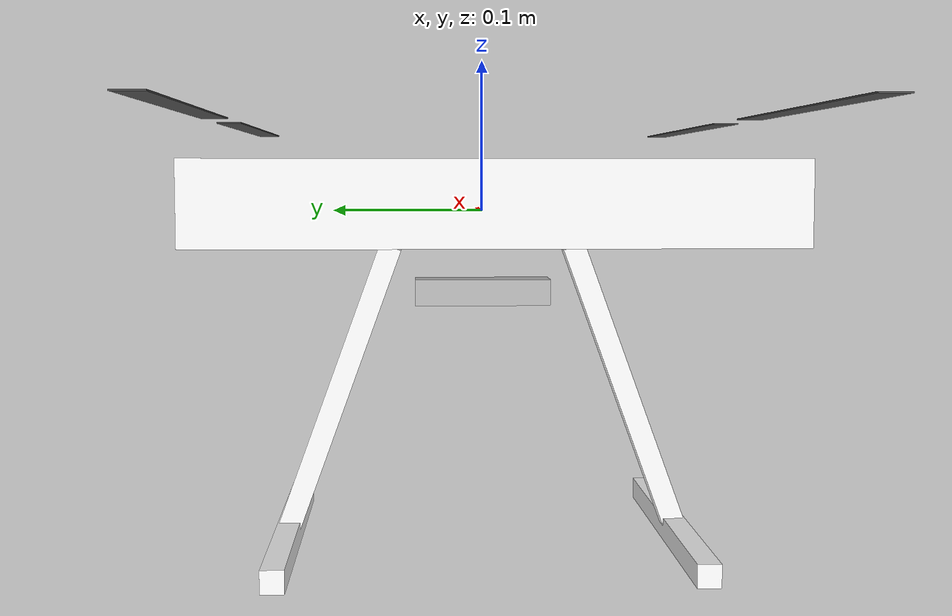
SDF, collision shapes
<?xml version="1.0" encoding="UTF-8"?>
<sdf version='1.9'>
  <model name='x500_base'>
    <self_collide>false</self_collide>
    <static>false</static>
    <link name="base_link">
      <inertial>
        <mass>2.0</mass>
        <inertia>
          <ixx>0.02166666666666667</ixx>
          <ixy>0</ixy>
          <ixz>0</ixz>
          <iyy>0.02166666666666667</iyy>
          <iyz>0</iyz>
          <izz>0.04000000000000001</izz>
        </inertia>
      </inertial>
      <gravity>true</gravity>
      <velocity_decay/>
      <visual name="base_link_visual">
        <pose>0 0 .025 0 0 3.141592654</pose>
        <geometry>
          <mesh>
            <scale>1 1 1</scale>
            <uri>package://carbodrone_px/models/x500_depth/meshes/NXP-HGD-CF.dae</uri>
          </mesh>
        </geometry>
      </visual>
      <visual name="5010_motor_base_0">
        <pose>0.174 0.174 .032 0 0 -.45</pose>
        <geometry>
          <mesh>
            <scale>1 1 1</scale>
            <uri>package://carbodrone_px/models/x500_depth/meshes/5010Base.dae</uri>
          </mesh>
        </geometry>
      </visual>
      <visual name="5010_motor_base_1">
        <pose>-0.174 0.174 .032 0 0 -.45</pose>
        <geometry>
          <mesh>
            <scale>1 1 1</scale>
            <uri>package://carbodrone_px/models/x500_depth/meshes/5010Base.dae</uri>
          </mesh>
        </geometry>
      </visual>
      <visual name="5010_motor_base_2">
        <pose>0.174 -0.174 .032 0 0 -.45</pose>
        <geometry>
          <mesh>
            <scale>1 1 1</scale>
            <uri>package://carbodrone_px/models/x500_depth/meshes/5010Base.dae</uri>
          </mesh>
        </geometry>
      </visual>
      <visual name="5010_motor_base_3">
        <pose>-0.174 -0.174 .032 0 0 -.45</pose>
        <geometry>
          <mesh>
            <scale>1 1 1</scale>
            <uri>package://carbodrone_px/models/x500_depth/meshes/5010Base.dae</uri>
          </mesh>
        </geometry>
      </visual>
      <visual name="NXP_FMUK66_FRONT">
        <pose>0.047 .001 .043 1 0 1.57</pose>
        <cast_shadows>false</cast_shadows>
        <geometry>
          <box>
            <size>.013 .007 0.001</size>
          </box>
        </geometry>
        <material>
          <diffuse>1.0 1.0 1.0</diffuse>
          <specular>1.0 1.0 1.0</specular>
          <pbr>
            <metal>
              <albedo_map>package://carbodrone_px/models/x500_depth/materials/textures/nxp.png</albedo_map>
            </metal>
          </pbr>
        </material>
      </visual>
      <visual name="NXP_FMUK66_TOP">
        <pose>-0.023 0 .0515 0 0 -1.57</pose>
        <cast_shadows>false</cast_shadows>
        <geometry>
          <box>
            <size>.013 .007 0.001</size>
          </box>
        </geometry>
        <material>
          <diffuse>1.0 1.0 1.0</diffuse>
          <specular>1.0 1.0 1.0</specular>
          <pbr>
            <metal>
              <albedo_map>package://carbodrone_px/models/x500_depth/materials/textures/nxp.png</albedo_map>
            </metal>
          </pbr>
        </material>
      </visual>
      <visual name="RDDRONE_FMUK66_TOP">
        <pose>-.03 0 .0515 0 0 -1.57</pose>
        <cast_shadows>false</cast_shadows>
        <geometry>
          <box>
            <size>.032 .0034 0.001</size>
          </box>
        </geometry>
        <material>
          <diffuse>1.0 1.0 1.0</diffuse>
          <specular>1.0 1.0 1.0</specular>
          <pbr>
            <metal>
              <albedo_map>package://carbodrone_px/models/x500_depth/materials/textures/rd.png</albedo_map>
            </metal>
          </pbr>
        </material>
      </visual>
      <collision name="base_link_collision_0">
        <pose>0 0 .007 0 0 0</pose>
        <geometry>
          <box>
            <size>0.35355339059327373 0.35355339059327373 0.05</size>
          </box>
        </geometry>
        <surface>
          <contact>
            <ode>
              <min_depth>0.001</min_depth>
              <max_vel>0</max_vel>
            </ode>
          </contact>
          <friction>
            <ode/>
          </friction>
        </surface>
      </collision>
      <collision name="base_link_collision_1">
        <pose>0 -0.098 -.123 -0.35 0 0</pose>
        <geometry>
          <box>
            <size>0.015 0.015 0.21</size>
          </box>
        </geometry>
        <surface>
          <contact>
            <ode>
              <min_depth>0.001</min_depth>
              <max_vel>0</max_vel>
            </ode>
          </contact>
          <friction>
            <ode/>
          </friction>
        </surface>
      </collision>
      <collision name="base_link_collision_2">
        <pose>0 0.098 -.123 0.35 0 0</pose>
        <geometry>
          <box>
            <size>0.015 0.015 0.21</size>
          </box>
        </geometry>
        <surface>
          <contact>
            <ode>
              <min_depth>0.001</min_depth>
              <max_vel>0</max_vel>
            </ode>
          </contact>
          <friction>
            <ode/>
          </friction>
        </surface>
      </collision>
      <collision name="base_link_collision_3">
        <pose>0 -0.132 -.2195 0 0 0</pose>
        <geometry>
          <box>
            <size>0.25 0.015 0.015</size>
          </box>
        </geometry>
        <surface>
          <contact>
            <ode>
              <min_depth>0.001</min_depth>
              <max_vel>0</max_vel>
            </ode>
          </contact>
          <friction>
            <ode/>
          </friction>
        </surface>
      </collision>
      <collision name="base_link_collision_4">
        <pose>0 0.132 -.2195 0 0 0</pose>
        <geometry>
          <box>
            <size>0.25 0.015 0.015</size>
          </box>
        </geometry>
        <surface>
          <contact>
            <ode>
              <min_depth>0.001</min_depth>
              <max_vel>0</max_vel>
            </ode>
          </contact>
          <friction>
            <ode/>
          </friction>
        </surface>
      </collision>
    </link>
    <link name="rotor_0">
      <gravity>true</gravity>
      <self_collide>false</self_collide>
      <velocity_decay/>
      <pose>0.174 -0.174 0.06 0 0 0</pose>
      <inertial>
          <mass>0.016076923076923075</mass>
          <inertia>
            <ixx>3.8464910483993325e-07</ixx>
            <iyy>2.6115851691700804e-05</iyy>
            <izz>2.649858234714004e-05</izz>
          </inertia>
        </inertial>
      <visual name="rotor_0_visual">
        <pose>-0.022 -0.14638461538461536 -0.016 0 0 0</pose>
        <geometry>
          <mesh>
            <scale>0.8461538461538461 0.8461538461538461 0.8461538461538461</scale>
            <uri>package://carbodrone_px/models/x500_depth/meshes/1345_prop_ccw.stl</uri>
          </mesh>
        </geometry>
        <material>
          <script>
            <name>Gazebo/DarkGrey</name>
            <uri>file://media/materials/scripts/gazebo.material</uri>
          </script>
        </material>
      </visual>
      <visual name="rotor_0_visual_motor_bell">
        <pose>0 0 -.032 0 0 0</pose>
        <geometry>
          <mesh>
            <scale>1 1 1</scale>
            <uri>package://carbodrone_px/models/x500_depth/meshes/5010Bell.dae</uri>
          </mesh>
        </geometry>
      </visual>
      <collision name="rotor_0_collision">
        <pose>0 0 0 0 0 0 </pose>
        <geometry>
          <box>
            <size>0.2792307692307692 0.016923076923076923 0.0008461538461538462</size>
          </box>
        </geometry>
        <surface>
          <contact>
            <ode>
              <min_depth>0.001</min_depth>
              <max_vel>0</max_vel>
            </ode>
          </contact>
          <friction>
            <ode/>
          </friction>
        </surface>
      </collision>
    </link>
    <joint name="rotor_0_joint" type="fixed">
      <parent>base_link</parent>
      <child>rotor_0</child>
    </joint>
    <link name="rotor_1">
      <gravity>true</gravity>
      <self_collide>false</self_collide>
      <velocity_decay/>
      <pose>-0.174 0.174 0.06 0 0 0</pose>
      <inertial>
          <mass>0.016076923076923075</mass>
          <inertia>
            <ixx>3.8464910483993325e-07</ixx>
            <iyy>2.6115851691700804e-05</iyy>
            <izz>2.649858234714004e-05</izz>
          </inertia>
        </inertial>
      <visual name="rotor_1_visual">
        <pose>-0.022 -0.14638461538461536 -0.016 0 0 0</pose>
        <geometry>
          <mesh>
            <scale>0.8461538461538461 0.8461538461538461 0.8461538461538461</scale>
            <uri>package://carbodrone_px/models/x500_depth/meshes/1345_prop_ccw.stl</uri>
          </mesh>
        </geometry>
        <material>
          <script>
            <name>Gazebo/DarkGrey</name>
            <uri>file://media/materials/scripts/gazebo.material</uri>
          </script>
        </material>
      </visual>
      <visual name="rotor_1_visual_motor_top">
        <pose>0 0 -.032 0 0 0</pose>
        <geometry>
          <mesh>
            <scale>1 1 1</scale>
            <uri>package://carbodrone_px/models/x500_depth/meshes/5010Bell.dae</uri>
          </mesh>
        </geometry>
      </visual>
      <collision name="rotor_1_collision">
        <pose>0 0 0 0 0 0 </pose>
        <geometry>
          <box>
            <size>0.2792307692307692 0.016923076923076923 0.0008461538461538462</size>
          </box>
        </geometry>
        <surface>
          <contact>
            <ode>
              <min_depth>0.001</min_depth>
              <max_vel>0</max_vel>
            </ode>
          </contact>
          <friction>
            <ode/>
          </friction>
        </surface>
      </collision>
    </link>
    <joint name="rotor_1_joint" type="fixed">
      <parent>base_link</parent>
      <child>rotor_1</child>
    </joint>
    <link name="rotor_2">
      <gravity>true</gravity>
      <self_collide>false</self_collide>
      <velocity_decay/>
      <pose>0.174 0.174 0.06 0 0 0</pose>
      <inertial>
          <mass>0.016076923076923075</mass>
          <inertia>
            <ixx>3.8464910483993325e-07</ixx>
            <iyy>2.6115851691700804e-05</iyy>
            <izz>2.649858234714004e-05</izz>
          </inertia>
        </inertial>
      <visual name="rotor_2_visual">
        <pose>-0.022 -0.14638461538461536 -0.016 0 0 0</pose>
        <geometry>
          <mesh>
            <scale>0.8461538461538461 0.8461538461538461 0.8461538461538461</scale>
            <uri>package://carbodrone_px/models/x500_depth/meshes/1345_prop_cw.stl</uri>
          </mesh>
        </geometry>
        <material>
          <script>
            <name>Gazebo/DarkGrey</name>
            <uri>file://media/materials/scripts/gazebo.material</uri>
          </script>
        </material>
      </visual>
      <visual name="rotor_2_visual_motor_top">
        <pose>0 0 -.032 0 0 0</pose>
        <geometry>
          <mesh>
            <scale>1 1 1</scale>
            <uri>package://carbodrone_px/models/x500_depth/meshes/5010Bell.dae</uri>
          </mesh>
        </geometry>
      </visual>
      <collision name="rotor_2_collision">
        <pose>0 0 0 0 0 0 </pose>
        <geometry>
          <box>
            <size>0.2792307692307692 0.016923076923076923 0.0008461538461538462</size>
          </box>
        </geometry>
        <surface>
          <contact>
            <ode>
              <min_depth>0.001</min_depth>
              <max_vel>0</max_vel>
            </ode>
          </contact>
          <friction>
            <ode/>
          </friction>
        </surface>
      </collision>
    </link>
    <joint name="rotor_2_joint" type="fixed">
      <parent>base_link</parent>
      <child>rotor_2</child>
    </joint>
    <link name="rotor_3">
      <gravity>true</gravity>
      <self_collide>false</self_collide>
      <velocity_decay/>
      <pose>-0.174 -0.174 0.06 0 0 0</pose>
      <inertial>
          <mass>0.016076923076923075</mass>
          <inertia>
            <ixx>3.8464910483993325e-07</ixx>
            <iyy>2.6115851691700804e-05</iyy>
            <izz>2.649858234714004e-05</izz>
          </inertia>
        </inertial>
      <visual name="rotor_3_visual">
        <pose>-0.022 -0.14638461538461536 -0.016 0 0 0</pose>
        <geometry>
          <mesh>
            <scale>0.8461538461538461 0.8461538461538461 0.8461538461538461</scale>
            <uri>package://carbodrone_px/models/x500_depth/meshes/1345_prop_cw.stl</uri>
          </mesh>
        </geometry>
        <material>
          <script>
            <name>Gazebo/DarkGrey</name>
            <uri>file://media/materials/scripts/gazebo.material</uri>
          </script>
        </material>
      </visual>
      <visual name="rotor_3_visual_motor_top">
        <pose>0 0 -.032 0 0 0</pose>
        <geometry>
          <mesh>
            <scale>1 1 1</scale>
            <uri>package://carbodrone_px/models/x500_depth/meshes/5010Bell.dae</uri>
          </mesh>
        </geometry>
      </visual>
      <collision name="rotor_3_collision">
        <pose>0 0 0 0 0 0 </pose>
        <geometry>
          <box>
            <size>0.2792307692307692 0.016923076923076923 0.0008461538461538462</size>
          </box>
        </geometry>
        <surface>
          <contact>
            <ode>
              <min_depth>0.001</min_depth>
              <max_vel>0</max_vel>
            </ode>
          </contact>
          <friction>
            <ode/>
          </friction>
        </surface>
      </collision>
    </link>
    <joint name="rotor_3_joint" type="fixed">
      <parent>base_link</parent>
      <child>rotor_3</child>
    </joint>

    <link name="x500_depth_0/OakD-Lite/base_link">
      <pose>.12 .03 .002 0 0 0</pose>
      <inertial>
        <pose>0.00358 -0.03 .014 0 0 0</pose>
        <mass>0.061</mass>
        <inertia>
          <ixx>0.0000460804</ixx>
          <ixy>0</ixy>
          <ixz>0</ixz>
          <iyy>0.0000055421</iyy>
          <iyz>0</iyz>
          <izz>0.0000436519</izz>
        </inertia>
      </inertial>
      <visual name="OakD-Lite/visual">
        <pose>0 0 0 0 0 0</pose>
        <geometry>
          <mesh>
            <scale>1 1 1</scale>
            <uri>package://carbodrone_px/models/OakD-Lite/meshes/OakDLite.dae</uri>
          </mesh>
        </geometry>
      </visual>
      <collision name="OakD-Lite/collision">
        <pose>0.00358 -0.03 .014 0 0 0</pose>
        <geometry>
          <box>
            <size>0.0175 0.091 0.028</size>
          </box>
        </geometry>
      </collision>
      <gravity>true</gravity>
      <velocity_decay/>
    </link>

    <joint name="front-cam-joint" type="fixed">
      <parent>base_link</parent>
      <child>x500_depth_0/OakD-Lite/base_link</child>
      <pose relative_to="base_link">.12 .03 .002 0 0 0</pose>
    </joint>

    <link name="x500_depth_0/OakD-Lite/base_link/StereoOV7251">
      <pose>.12 .03 .002 0 0 0</pose>
    </link>
    <joint name="front-cam-stereo-joint" type="fixed">
      <parent>x500_depth_0/OakD-Lite/base_link</parent>
      <child>x500_depth_0/OakD-Lite/base_link/StereoOV7251</child>
      <pose>0 0 0 0 0 0</pose>
    </joint>

    <link name="x500_depth_0/OakD-Lite/base_link/IMX214">
      <pose>.12 .03 .002 0 0 0</pose>
    </link>
    <joint name="front-cam-imx-joint" type="fixed">
      <parent>x500_depth_0/OakD-Lite/base_link</parent>
      <child>x500_depth_0/OakD-Lite/base_link/IMX214</child>
      <pose>0 0 0 0 0 0</pose>
    </joint>

    <link name="x500_depth_0/bottom-cam/base_link">
      <pose>0 0 -0.055 0 1.57 0</pose>
      <inertial>
        <mass>0.001</mass>
        <inertia>
          <ixx>0.0000000001</ixx>
          <ixy>0</ixy>
          <ixz>0</ixz>
          <iyy>0.0000000001</iyy>
          <iyz>0</iyz>
          <izz>0.0000000001</izz>
        </inertia>
      </inertial>
      <visual name="bottom-cam/visual">
        <geometry>
          <box>
            <size>0.0175 0.091 0.028</size>
          </box>
        </geometry>
      </visual>
      <collision name="bottom-cam/collision">
        <geometry>
          <box>
            <size>0.0175 0.091 0.028</size>
          </box>
        </geometry>
      </collision>
      <gravity>true</gravity>
      <velocity_decay/>
    </link>

    <joint name="bottom-cam-joint" type="fixed">
      <parent>base_link</parent>
      <child>x500_depth_0/bottom-cam/base_link</child>
      <pose relative_to="base_link">0 0 -0.055 0 1.57 0</pose>
    </joint>

    <link name="x500_depth_0/bottom-cam/base_link/StereoOV7251">
      <pose>0 0 -0.055 0 1.57 0</pose>
    </link>
    <joint name="bottom-cam-stereo-joint" type="fixed">
      <parent>x500_depth_0/bottom-cam/base_link</parent>
      <child>x500_depth_0/bottom-cam/base_link/StereoOV7251</child>
      <pose>0 0 0 0 0 0</pose>
    </joint>

    <link name="x500_depth_0/bottom-cam/base_link/IMX214">
      <pose>0 0 -0.055 0 1.57 0</pose>
    </link>
    <joint name="bottom-cam-imx-joint" type="fixed">
      <parent>x500_depth_0/bottom-cam/base_link</parent>
      <child>x500_depth_0/bottom-cam/base_link/IMX214</child>
      <pose>0 0 0 0 0 0</pose>
    </joint>

  </model>
</sdf>
